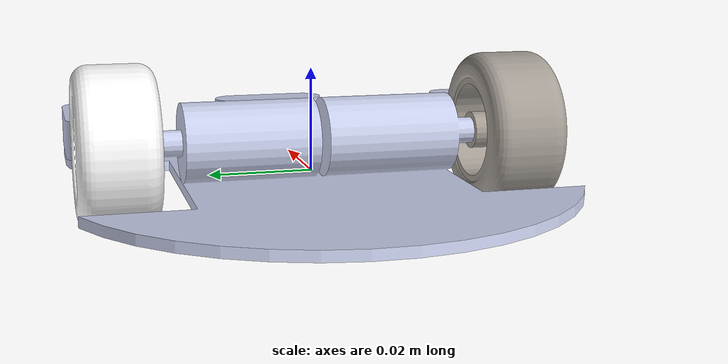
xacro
<?xml version="1.0" encoding="utf-8"?>
<robot xmlns:xacro="http://www.ros.org/wiki/xacro"
  name="Micromouse">
  <xacro:include filename="$(find Micromouse)/urdf/plugins.gazebo"/>

  <link
    name="base_link">
    <inertial>
      <origin
        xyz="-0.000940759856564177 -5.55111512312578E-17 0.00218640701823889"
        rpy="0 0 0" />
      <mass
        value="0.0235966095654301" />
      <inertia
        ixx="7.08034768833909E-06"
        ixy="-7.14992103366553E-21"
        ixz="7.38584719236722E-08"
        iyy="1.30407206907464E-05"
        iyz="4.68497300087532E-22"
        izz="1.98432373960643E-05" />
    </inertial>
    <visual>
      <origin
        xyz="0 0 0"
        rpy="0 0 0" />
      <geometry>
        <mesh
          filename="package://Micromouse/meshes/base_link.STL" />
      </geometry>
      <material
        name="">
        <color
          rgba="0.792156862745098 0.819607843137255 0.933333333333333 1" />
      </material>
    </visual>
    <collision>
      <origin
        xyz="0 0 0"
        rpy="0 0 0" />
      <geometry>
        <mesh
          filename="package://Micromouse/meshes/base_link.STL" />
      </geometry>
    </collision>
  </link>
  <link
    name="left_wheel_link">
    <inertial>
      <origin
        xyz="2.23662070530928E-08 -0.00579226687615948 2.00590607843561E-08"
        rpy="0 0 0" />
      <mass
        value="0.00459134161464123" />
      <inertia
        ixx="4.32015068101083E-07"
        ixy="-4.33374415053016E-13"
        ixz="-2.4321157077044E-13"
        iyy="6.68585408374072E-07"
        iyz="-3.88670448858445E-13"
        izz="4.32015121162766E-07" />
    </inertial>
    <visual>
      <origin
        xyz="0 0 0"
        rpy="0 0 0" />
      <geometry>
        <mesh
          filename="package://Micromouse/meshes/left_wheel_link.STL" />
      </geometry>
      <material
        name="">
        <color
          rgba="1 1 1 1" />
      </material>
    </visual>
    <collision>
      <origin
        xyz="0 0 0"
        rpy="0 0 0" />
      <geometry>
        <mesh
          filename="package://Micromouse/meshes/left_wheel_link.STL" />
      </geometry>
    </collision>
  </link>
  <joint
    name="left_wheel_joint"
    type="continuous">
    <origin
      xyz="-0.00507915897555939 0.0438257569495585 0.00749999999999996"
      rpy="0 0 0" />
    <parent
      link="base_link" />
    <child
      link="left_wheel_link" />
    <axis
      xyz="0 1 0" />
  </joint>
  <link
    name="right_wheel_link">
    <inertial>
      <origin
        xyz="1.80147178251155E-08 0.00579226687615944 -2.42705773256802E-08"
        rpy="0 0 0" />
      <mass
        value="0.00459134161464123" />
      <inertia
        ixx="4.32015169308896E-07"
        ixy="3.4310405428802E-13"
        ixz="2.32978762352935E-13"
        iyy="6.68585408374072E-07"
        iyz="-4.70274079027024E-13"
        izz="4.32015019954954E-07" />
    </inertial>
    <visual>
      <origin
        xyz="0 0 0"
        rpy="0 0 0" />
      <geometry>
        <mesh
          filename="package://Micromouse/meshes/right_wheel_link.STL" />
      </geometry>
      <material
        name="">
        <color
          rgba="0.647058823529412 0.619607843137255 0.588235294117647 1" />
      </material>
    </visual>
    <collision>
      <origin
        xyz="0 0 0"
        rpy="0 0 0" />
      <geometry>
        <mesh
          filename="package://Micromouse/meshes/right_wheel_link.STL" />
      </geometry>
    </collision>
  </link>
  <joint
    name="right_wheel_joint"
    type="continuous">
    <origin
      xyz="-0.00507915907051316 -0.0438257569495584 0.0075"
      rpy="0 0 0" />
    <parent
      link="base_link" />
    <child
      link="right_wheel_link" />
    <axis
      xyz="0 1 0" />
  </joint>
  <link
    name="ir_front_link">
    <inertial>
      <origin
        xyz="0 -1.38777878078145E-17 -0.004"
        rpy="0 0 0" />
      <mass
        value="0.00142612385965949" />
      <inertia
        ixx="6.77184163750294E-08"
        ixy="1.59010716640219E-25"
        ixz="-4.41162993361615E-25"
        iyy="1.46758226901553E-08"
        iyz="-4.41162993361615E-25"
        izz="6.71822512288168E-08" />
    </inertial>
    <visual>
      <origin
        xyz="0 0 0"
        rpy="0 0 0" />
      <geometry>
        <mesh
          filename="package://Micromouse/meshes/ir_front_link.STL" />
      </geometry>
      <material
        name="">
        <color
          rgba="0.792156862745098 0.819607843137255 0.933333333333333 1" />
      </material>
    </visual>
    <collision>
      <origin
        xyz="0 0 0"
        rpy="0 0 0" />
      <geometry>
        <mesh
          filename="package://Micromouse/meshes/ir_front_link.STL" />
      </geometry>
    </collision>
  </link>
  <joint
    name="ir_front_joint"
    type="fixed">
    <origin
      xyz="0.0409208410244407 0 0.008"
      rpy="0 0 0" />
    <parent
      link="base_link" />
    <child
      link="ir_front_link" />
    <axis
      xyz="0 0 0" />
  </joint>
  <link
    name="ir_left_link">
    <inertial>
      <origin
        xyz="-1.73472347597681E-18 0 -0.004"
        rpy="0 0 0" />
      <mass
        value="0.00142612385965949" />
      <inertia
        ixx="1.46758226901553E-08"
        ixy="-7.59044967803373E-25"
        ixz="-4.10143720390875E-25"
        iyy="6.77184163750295E-08"
        iyz="-4.87982457176779E-26"
        izz="6.71822512288168E-08" />
    </inertial>
    <visual>
      <origin
        xyz="0 0 0"
        rpy="0 0 -1.57" />
      <geometry>
        <mesh
          filename="package://Micromouse/meshes/ir_left_link.STL" />
      </geometry>
      <material
        name="">
        <color
          rgba="0.792156862745098 0.819607843137255 0.933333333333333 1" />
      </material>
    </visual>
    <collision>
      <origin
        xyz="0 0 0"
        rpy="0 0 0" />
      <geometry>
        <mesh
          filename="package://Micromouse/meshes/ir_left_link.STL" />
      </geometry>
    </collision>
  </link>
  <joint
    name="ir_left_joint"
    type="fixed">
    <origin
      xyz="0.0302450629402907 0.0418257569495585 0.008"
      rpy="0 0 1.57" />
    <parent
      link="base_link" />
    <child
      link="ir_left_link" />
    <axis
      xyz="0 0 0" />
  </joint>
  <link
    name="ir_right_link">
    <inertial>
      <origin
        xyz="1.56125112837913E-17 2.77555756156289E-17 -0.004"
        rpy="0 0 0" />
      <mass
        value="0.00142612385965949" />
      <inertia
        ixx="1.46758226901553E-08"
        ixy="2.2497267567896E-25"
        ixz="-2.48480272739894E-24"
        iyy="6.77184163750295E-08"
        iyz="2.80078449853053E-25"
        izz="6.71822512288169E-08" />
    </inertial>
    <visual>
      <origin
        xyz="0 0 0"
        rpy="0 0 1.57" />
      <geometry>
        <mesh
          filename="package://Micromouse/meshes/ir_right_link.STL" />
      </geometry>
      <material
        name="">
        <color
          rgba="0.792156862745098 0.819607843137255 0.933333333333333 1" />
      </material>
    </visual>
    <collision>
      <origin
        xyz="0 0 0"
        rpy="0 0 0" />
      <geometry>
        <mesh
          filename="package://Micromouse/meshes/ir_right_link.STL" />
      </geometry>
    </collision>
  </link>
  <joint
    name="ir_right_link"
    type="fixed">
    <origin
      xyz="0.0302450629402908 -0.0418257569495584 0.008"
      rpy="0 0 -1.57" />
    <parent
      link="base_link" />
    <child
      link="ir_right_link" />
    <axis
      xyz="0 0 1" />
  </joint>
  <link
    name="imu_link">
    <visual>
      <origin
        xyz="0.01 0 0"
        rpy="0 0 1.57" />
       <geometry>
        <box size="0.01 0.01 0.01"/>
       </geometry>
      <material
        name="">
        <color
          rgba="0.792156862745098 0.819607843137255 0.933333333333333 1" />
      </material>
    </visual>
  </link>
  <joint name="imu_joint" type="fixed">
    <parent link="base_link"/>
    <child link="imu_link"/>
    <origin xyz="0.0 0.0 0.0" rpy="0.0 0.0 0.0"/>
  </joint>
</robot>
